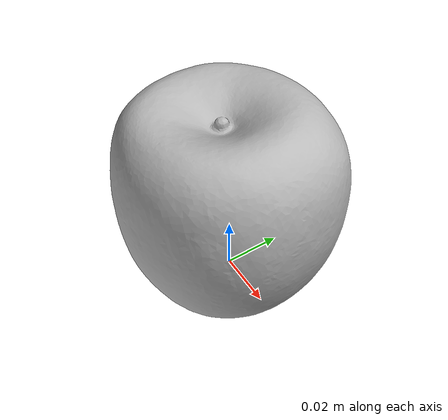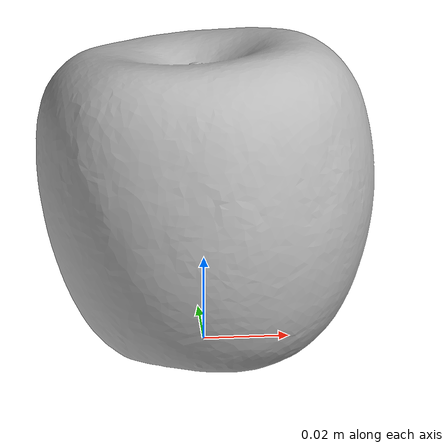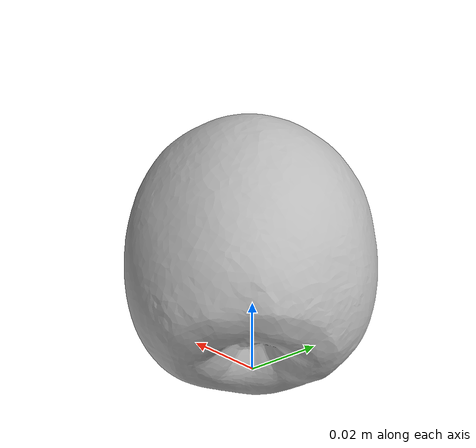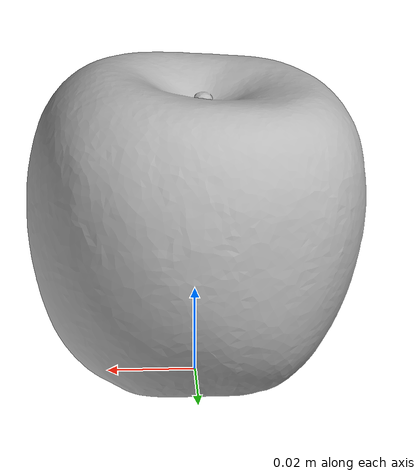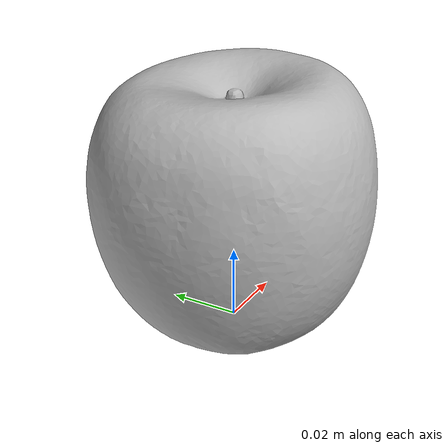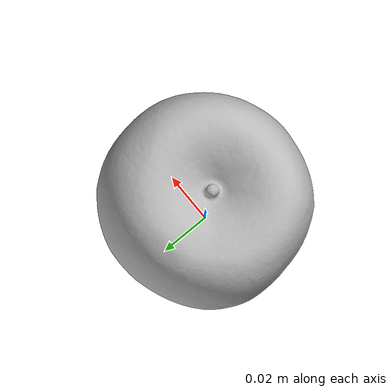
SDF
<?xml version="1.0" ?>
<sdf version='1.8'>
  <model name='ycb_013_apple'>
    <link name='body'>
      <inertial>
        <mass>0.068</mass>
        <pose>0.000411580164 -3.02426692e-05 0.0365377327 0 0 0</pose>
        <inertia>
          <ixx>4.1563768131e-05</ixx>
          <ixy>6.80461992324e-08</ixy>
          <ixz>1.15809005851e-07</ixz>
          <iyy>4.22411438136e-05</iyy>
          <iyz>-1.43268977382e-07</iyz>
          <izz>4.20557651075e-05</izz>
        </inertia>
      </inertial>
      <visual name='ycb_013_apple_visual'>
        <pose>-0.000899 0.003831 0.000201 0 0 0</pose>
        <geometry>
          <mesh>
            <uri>model://ycb_013_apple/meshes/textured.dae</uri>
          </mesh>
        </geometry>
      </visual>
      <collision name='ycb_013_apple_collision'>
        <pose>-0.000899 0.003831 0.000201 0 0 0</pose>
        <geometry>
          <mesh>
            <uri>model://ycb_013_apple/meshes/nontextured.stl</uri>
          </mesh>
        </geometry>
        <max_contacts>10</max_contacts>
        <surface>
          <contact>
            <ode>
              <kp>1e15</kp>
              <kd>1e13</kd>
            </ode>
          </contact>
        </surface>
      </collision>
    </link>
  </model>
</sdf>
